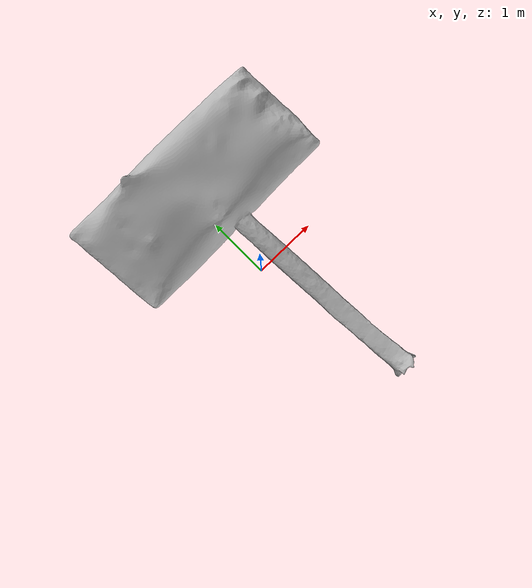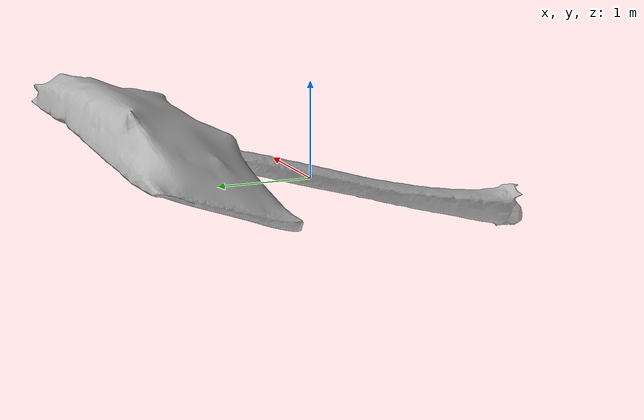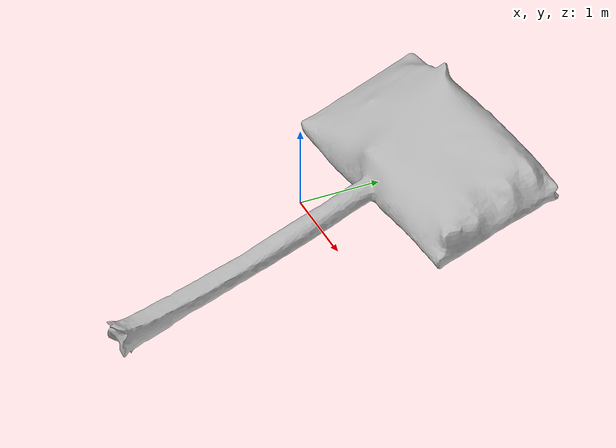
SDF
<?xml version="1.0" ?>
<sdf version="1.6">
  <model name="kare-plastic-free-zone-board">
    <static>true</static>
    <link name="link">
      <collision name="collision">
        <geometry>
          <mesh>
            <scale>5 5 5</scale>
            <uri>model://kare-plastic-free-zone-board/meshes/kare-plastic-free-zone-board.obj</uri>
          </mesh>
        </geometry>
      </collision>
      <visual name="visual">
        <geometry>
          <mesh>
            <scale>5 5 5</scale>
            <uri>model://kare-plastic-free-zone-board/meshes/kare-plastic-free-zone-board.obj</uri>
          </mesh>
        </geometry>
      </visual>
    </link>
  </model>
</sdf>
